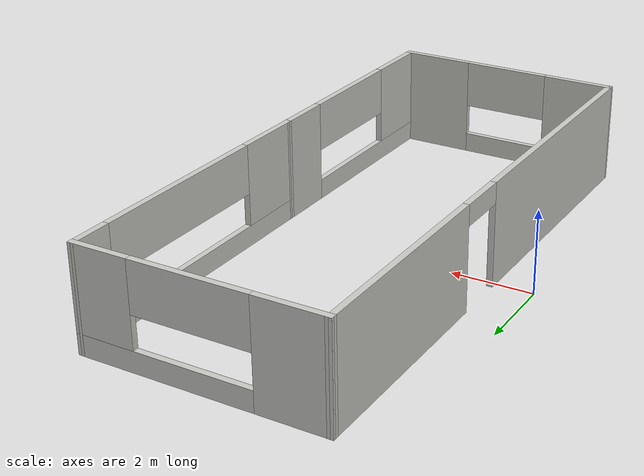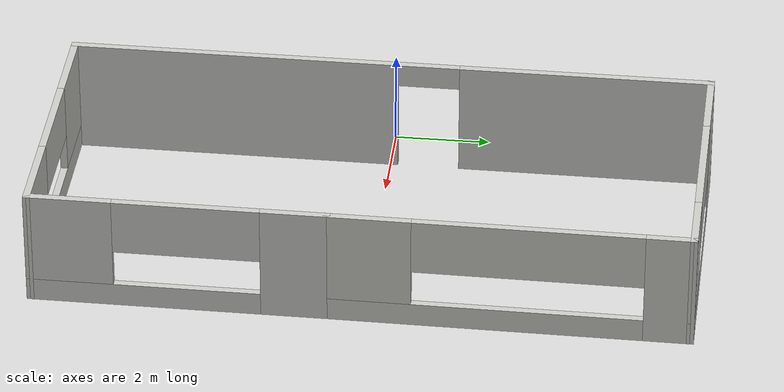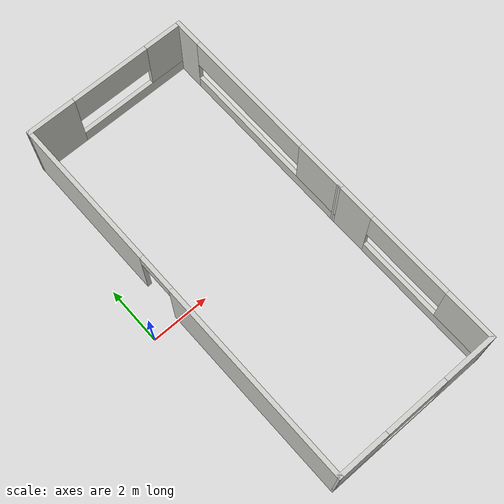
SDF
<sdf version="1.6">
 <model name="single_floor_building">
  <link name="Wall_10">
   <pose>3.86966 6.71461 0 0 -0 0</pose>
   <visual name="Wall_10_Visual_0">
    <pose>-2.10615 0 1.25 0 -0 0</pose>
    <geometry><box><size>1.71925 0.15 2.5</size></box></geometry>
    <material>
     <script><uri>file://media/materials/scripts/gazebo.material</uri><name>Gazebo/CeilingTiled</name></script>
     <ambient>0.996078 0.47451 0.0196078 1</ambient>
     <shader type="pixel"/>
     <diffuse>1 1 1 1</diffuse>
     <specular>0 0 0 1</specular>
     <emissive>0 0 0 1</emissive>
    </material>
    <meta><layer>0</layer></meta>
   </visual>
   <visual name="Wall_10_Visual_1">
    <pose>0.859627 0 0.25 0 -0 0</pose>
    <geometry><box><size>4.2123 0.15 0.5</size></box></geometry>
    <material>
     <script><uri>file://media/materials/scripts/gazebo.material</uri><name>Gazebo/CeilingTiled</name></script>
     <ambient>0.996078 0.47451 0.0196078 1</ambient>
     <shader type="pixel"/>
     <diffuse>1 1 1 1</diffuse>
     <specular>0 0 0 1</specular>
     <emissive>0 0 0 1</emissive>
    </material>
    <meta><layer>0</layer></meta>
   </visual>
   <visual name="Wall_10_Visual_2">
    <pose>2.25525 0 1.5 0 -0 0</pose>
    <geometry><box><size>1.42105 0.15 2</size></box></geometry>
    <material>
     <script><uri>file://media/materials/scripts/gazebo.material</uri><name>Gazebo/CeilingTiled</name></script>
     <ambient>0.996078 0.47451 0.0196078 1</ambient>
     <shader type="pixel"/>
     <diffuse>1 1 1 1</diffuse>
     <specular>0 0 0 1</specular>
     <emissive>0 0 0 1</emissive>
    </material>
    <meta><layer>0</layer></meta>
   </visual>
   <visual name="Wall_10_Visual_3">
    <pose>0.1491 0 1.9 0 -0 0</pose>
    <geometry><box><size>2.79124 0.15 1.2</size></box></geometry>
    <material>
     <script><uri>file://media/materials/scripts/gazebo.material</uri><name>Gazebo/CeilingTiled</name></script>
     <ambient>0.996078 0.47451 0.0196078 1</ambient>
     <shader type="pixel"/>
     <diffuse>1 1 1 1</diffuse>
     <specular>0 0 0 1</specular>
     <emissive>0 0 0 1</emissive>
    </material>
    <meta><layer>0</layer></meta>
   </visual>
   <collision name="Wall_10_Collision_0">
    <pose>-2.10615 0 1.25 0 -0 0</pose>
    <geometry><box><size>1.71925 0.15 2.5</size></box></geometry>
    <surface>
     <friction>
      <ode><mu>1</mu><mu2>1</mu2><fdir1>0 0 0</fdir1><slip1>0</slip1><slip2>0</slip2></ode>
      <torsional>
       <coefficient>1</coefficient>
       <patch_radius>0</patch_radius>
       <surface_radius>0</surface_radius>
       <use_patch_radius>1</use_patch_radius>
       <ode><slip>0</slip></ode>
      </torsional>
     </friction>
     <bounce><restitution_coefficient>0</restitution_coefficient><threshold>1e+06</threshold></bounce>
     <contact>
      <collide_without_contact>0</collide_without_contact>
      <collide_without_contact_bitmask>1</collide_without_contact_bitmask>
      <collide_bitmask>1</collide_bitmask>
      <ode>
       <soft_cfm>0</soft_cfm>
       <soft_erp>0.2</soft_erp>
       <kp>1e+13</kp>
       <kd>1</kd>
       <max_vel>0.01</max_vel>
       <min_depth>0</min_depth>
      </ode>
      <bullet>
       <split_impulse>1</split_impulse>
       <split_impulse_penetration_threshold>-0.01</split_impulse_penetration_threshold>
       <soft_cfm>0</soft_cfm>
       <soft_erp>0.2</soft_erp>
       <kp>1e+13</kp>
       <kd>1</kd>
      </bullet>
     </contact>
    </surface>
   </collision>
   <collision name="Wall_10_Collision_1">
    <pose>0.859627 0 0.25 0 -0 0</pose>
    <geometry><box><size>4.2123 0.15 0.5</size></box></geometry>
    <surface>
     <friction>
      <ode><mu>1</mu><mu2>1</mu2><fdir1>0 0 0</fdir1><slip1>0</slip1><slip2>0</slip2></ode>
      <torsional>
       <coefficient>1</coefficient>
       <patch_radius>0</patch_radius>
       <surface_radius>0</surface_radius>
       <use_patch_radius>1</use_patch_radius>
       <ode><slip>0</slip></ode>
      </torsional>
     </friction>
     <bounce><restitution_coefficient>0</restitution_coefficient><threshold>1e+06</threshold></bounce>
     <contact>
      <collide_without_contact>0</collide_without_contact>
      <collide_without_contact_bitmask>1</collide_without_contact_bitmask>
      <collide_bitmask>1</collide_bitmask>
      <ode>
       <soft_cfm>0</soft_cfm>
       <soft_erp>0.2</soft_erp>
       <kp>1e+13</kp>
       <kd>1</kd>
       <max_vel>0.01</max_vel>
       <min_depth>0</min_depth>
      </ode>
      <bullet>
       <split_impulse>1</split_impulse>
       <split_impulse_penetration_threshold>-0.01</split_impulse_penetration_threshold>
       <soft_cfm>0</soft_cfm>
       <soft_erp>0.2</soft_erp>
       <kp>1e+13</kp>
       <kd>1</kd>
      </bullet>
     </contact>
    </surface>
   </collision>
   <collision name="Wall_10_Collision_2">
    <pose>2.25525 0 1.5 0 -0 0</pose>
    <geometry><box><size>1.42105 0.15 2</size></box></geometry>
    <surface>
     <friction>
      <ode><mu>1</mu><mu2>1</mu2><fdir1>0 0 0</fdir1><slip1>0</slip1><slip2>0</slip2></ode>
      <torsional>
       <coefficient>1</coefficient>
       <patch_radius>0</patch_radius>
       <surface_radius>0</surface_radius>
       <use_patch_radius>1</use_patch_radius>
       <ode><slip>0</slip></ode>
      </torsional>
     </friction>
     <bounce><restitution_coefficient>0</restitution_coefficient><threshold>1e+06</threshold></bounce>
     <contact>
      <collide_without_contact>0</collide_without_contact>
      <collide_without_contact_bitmask>1</collide_without_contact_bitmask>
      <collide_bitmask>1</collide_bitmask>
      <ode>
       <soft_cfm>0</soft_cfm>
       <soft_erp>0.2</soft_erp>
       <kp>1e+13</kp>
       <kd>1</kd>
       <max_vel>0.01</max_vel>
       <min_depth>0</min_depth>
      </ode>
      <bullet>
       <split_impulse>1</split_impulse>
       <split_impulse_penetration_threshold>-0.01</split_impulse_penetration_threshold>
       <soft_cfm>0</soft_cfm>
       <soft_erp>0.2</soft_erp>
       <kp>1e+13</kp>
       <kd>1</kd>
      </bullet>
     </contact>
    </surface>
   </collision>
   <collision name="Wall_10_Collision_3">
    <pose>0.1491 0 1.9 0 -0 0</pose>
    <geometry><box><size>2.79124 0.15 1.2</size></box></geometry>
    <surface>
     <friction>
      <ode><mu>1</mu><mu2>1</mu2><fdir1>0 0 0</fdir1><slip1>0</slip1><slip2>0</slip2></ode>
      <torsional>
       <coefficient>1</coefficient>
       <patch_radius>0</patch_radius>
       <surface_radius>0</surface_radius>
       <use_patch_radius>1</use_patch_radius>
       <ode><slip>0</slip></ode>
      </torsional>
     </friction>
     <bounce><restitution_coefficient>0</restitution_coefficient><threshold>1e+06</threshold></bounce>
     <contact>
      <collide_without_contact>0</collide_without_contact>
      <collide_without_contact_bitmask>1</collide_without_contact_bitmask>
      <collide_bitmask>1</collide_bitmask>
      <ode>
       <soft_cfm>0</soft_cfm>
       <soft_erp>0.2</soft_erp>
       <kp>1e+13</kp>
       <kd>1</kd>
       <max_vel>0.01</max_vel>
       <min_depth>0</min_depth>
      </ode>
      <bullet>
       <split_impulse>1</split_impulse>
       <split_impulse_penetration_threshold>-0.01</split_impulse_penetration_threshold>
       <soft_cfm>0</soft_cfm>
       <soft_erp>0.2</soft_erp>
       <kp>1e+13</kp>
       <kd>1</kd>
      </bullet>
     </contact>
    </surface>
   </collision>
  </link>
  <link name="Wall_11">
   <pose>6.74514 3.02848 0 0 0 -1.57495</pose>
   <visual name="Wall_11_Visual_0">
    <pose>-3.24419 0 1.25 0 -0 0</pose>
    <geometry><box><size>1.03393 0.15 2.5</size></box></geometry>
    <material>
     <script><uri>file://media/materials/scripts/gazebo.material</uri><name>Gazebo/CeilingTiled</name></script>
     <ambient>0.996078 0.47451 0.0196078 1</ambient>
     <shader type="pixel"/>
     <diffuse>1 1 1 1</diffuse>
     <specular>0 0 0 1</specular>
     <emissive>0 0 0 1</emissive>
    </material>
    <meta><layer>0</layer></meta>
   </visual>
   <visual name="Wall_11_Visual_1">
    <pose>0.516965 0 0.25 0 -0 0</pose>
    <geometry><box><size>6.48838 0.15 0.5</size></box></geometry>
    <material>
     <script><uri>file://media/materials/scripts/gazebo.material</uri><name>Gazebo/CeilingTiled</name></script>
     <ambient>0.996078 0.47451 0.0196078 1</ambient>
     <shader type="pixel"/>
     <diffuse>1 1 1 1</diffuse>
     <specular>0 0 0 1</specular>
     <emissive>0 0 0 1</emissive>
    </material>
    <meta><layer>0</layer></meta>
   </visual>
   <visual name="Wall_11_Visual_2">
    <pose>2.86792 0 1.5 0 -0 0</pose>
    <geometry><box><size>1.78646 0.15 2</size></box></geometry>
    <material>
     <script><uri>file://media/materials/scripts/gazebo.material</uri><name>Gazebo/CeilingTiled</name></script>
     <ambient>0.996078 0.47451 0.0196078 1</ambient>
     <shader type="pixel"/>
     <diffuse>1 1 1 1</diffuse>
     <specular>0 0 0 1</specular>
     <emissive>0 0 0 1</emissive>
    </material>
    <meta><layer>0</layer></meta>
   </visual>
   <visual name="Wall_11_Visual_3">
    <pose>-0.376266 0 1.9 0 -0 0</pose>
    <geometry><box><size>4.70192 0.15 1.2</size></box></geometry>
    <material>
     <script><uri>file://media/materials/scripts/gazebo.material</uri><name>Gazebo/CeilingTiled</name></script>
     <ambient>0.996078 0.47451 0.0196078 1</ambient>
     <shader type="pixel"/>
     <diffuse>1 1 1 1</diffuse>
     <specular>0 0 0 1</specular>
     <emissive>0 0 0 1</emissive>
    </material>
    <meta><layer>0</layer></meta>
   </visual>
   <collision name="Wall_11_Collision_0">
    <pose>-3.24419 0 1.25 0 -0 0</pose>
    <geometry><box><size>1.03393 0.15 2.5</size></box></geometry>
    <surface>
     <friction>
      <ode><mu>1</mu><mu2>1</mu2><fdir1>0 0 0</fdir1><slip1>0</slip1><slip2>0</slip2></ode>
      <torsional>
       <coefficient>1</coefficient>
       <patch_radius>0</patch_radius>
       <surface_radius>0</surface_radius>
       <use_patch_radius>1</use_patch_radius>
       <ode><slip>0</slip></ode>
      </torsional>
     </friction>
     <bounce><restitution_coefficient>0</restitution_coefficient><threshold>1e+06</threshold></bounce>
     <contact>
      <collide_without_contact>0</collide_without_contact>
      <collide_without_contact_bitmask>1</collide_without_contact_bitmask>
      <collide_bitmask>1</collide_bitmask>
      <ode>
       <soft_cfm>0</soft_cfm>
       <soft_erp>0.2</soft_erp>
       <kp>1e+13</kp>
       <kd>1</kd>
       <max_vel>0.01</max_vel>
       <min_depth>0</min_depth>
      </ode>
      <bullet>
       <split_impulse>1</split_impulse>
       <split_impulse_penetration_threshold>-0.01</split_impulse_penetration_threshold>
       <soft_cfm>0</soft_cfm>
       <soft_erp>0.2</soft_erp>
       <kp>1e+13</kp>
       <kd>1</kd>
      </bullet>
     </contact>
    </surface>
   </collision>
   <collision name="Wall_11_Collision_1">
    <pose>0.516965 0 0.25 0 -0 0</pose>
    <geometry><box><size>6.48838 0.15 0.5</size></box></geometry>
    <surface>
     <friction>
      <ode><mu>1</mu><mu2>1</mu2><fdir1>0 0 0</fdir1><slip1>0</slip1><slip2>0</slip2></ode>
      <torsional>
       <coefficient>1</coefficient>
       <patch_radius>0</patch_radius>
       <surface_radius>0</surface_radius>
       <use_patch_radius>1</use_patch_radius>
       <ode><slip>0</slip></ode>
      </torsional>
     </friction>
     <bounce><restitution_coefficient>0</restitution_coefficient><threshold>1e+06</threshold></bounce>
     <contact>
      <collide_without_contact>0</collide_without_contact>
      <collide_without_contact_bitmask>1</collide_without_contact_bitmask>
      <collide_bitmask>1</collide_bitmask>
      <ode>
       <soft_cfm>0</soft_cfm>
       <soft_erp>0.2</soft_erp>
       <kp>1e+13</kp>
       <kd>1</kd>
       <max_vel>0.01</max_vel>
       <min_depth>0</min_depth>
      </ode>
      <bullet>
       <split_impulse>1</split_impulse>
       <split_impulse_penetration_threshold>-0.01</split_impulse_penetration_threshold>
       <soft_cfm>0</soft_cfm>
       <soft_erp>0.2</soft_erp>
       <kp>1e+13</kp>
       <kd>1</kd>
      </bullet>
     </contact>
    </surface>
   </collision>
   <collision name="Wall_11_Collision_2">
    <pose>2.86792 0 1.5 0 -0 0</pose>
    <geometry><box><size>1.78646 0.15 2</size></box></geometry>
    <surface>
     <friction>
      <ode><mu>1</mu><mu2>1</mu2><fdir1>0 0 0</fdir1><slip1>0</slip1><slip2>0</slip2></ode>
      <torsional>
       <coefficient>1</coefficient>
       <patch_radius>0</patch_radius>
       <surface_radius>0</surface_radius>
       <use_patch_radius>1</use_patch_radius>
       <ode><slip>0</slip></ode>
      </torsional>
     </friction>
     <bounce><restitution_coefficient>0</restitution_coefficient><threshold>1e+06</threshold></bounce>
     <contact>
      <collide_without_contact>0</collide_without_contact>
      <collide_without_contact_bitmask>1</collide_without_contact_bitmask>
      <collide_bitmask>1</collide_bitmask>
      <ode>
       <soft_cfm>0</soft_cfm>
       <soft_erp>0.2</soft_erp>
       <kp>1e+13</kp>
       <kd>1</kd>
       <max_vel>0.01</max_vel>
       <min_depth>0</min_depth>
      </ode>
      <bullet>
       <split_impulse>1</split_impulse>
       <split_impulse_penetration_threshold>-0.01</split_impulse_penetration_threshold>
       <soft_cfm>0</soft_cfm>
       <soft_erp>0.2</soft_erp>
       <kp>1e+13</kp>
       <kd>1</kd>
      </bullet>
     </contact>
    </surface>
   </collision>
   <collision name="Wall_11_Collision_3">
    <pose>-0.376266 0 1.9 0 -0 0</pose>
    <geometry><box><size>4.70192 0.15 1.2</size></box></geometry>
    <surface>
     <friction>
      <ode><mu>1</mu><mu2>1</mu2><fdir1>0 0 0</fdir1><slip1>0</slip1><slip2>0</slip2></ode>
      <torsional>
       <coefficient>1</coefficient>
       <patch_radius>0</patch_radius>
       <surface_radius>0</surface_radius>
       <use_patch_radius>1</use_patch_radius>
       <ode><slip>0</slip></ode>
      </torsional>
     </friction>
     <bounce><restitution_coefficient>0</restitution_coefficient><threshold>1e+06</threshold></bounce>
     <contact>
      <collide_without_contact>0</collide_without_contact>
      <collide_without_contact_bitmask>1</collide_without_contact_bitmask>
      <collide_bitmask>1</collide_bitmask>
      <ode>
       <soft_cfm>0</soft_cfm>
       <soft_erp>0.2</soft_erp>
       <kp>1e+13</kp>
       <kd>1</kd>
       <max_vel>0.01</max_vel>
       <min_depth>0</min_depth>
      </ode>
      <bullet>
       <split_impulse>1</split_impulse>
       <split_impulse_penetration_threshold>-0.01</split_impulse_penetration_threshold>
       <soft_cfm>0</soft_cfm>
       <soft_erp>0.2</soft_erp>
       <kp>1e+13</kp>
       <kd>1</kd>
      </bullet>
     </contact>
    </surface>
   </collision>
  </link>
  <link name="Wall_7">
   <pose>6.72985 -3.70137 0 0 0 -1.5708</pose>
   <visual name="Wall_7_Visual_0">
    <pose>-2.40595 0 1.25 0 -0 0</pose>
    <geometry><box><size>1.42563 0.15 2.5</size></box></geometry>
    <material>
     <script><uri>file://media/materials/scripts/gazebo.material</uri><name>Gazebo/CeilingTiled</name></script>
     <ambient>0.996078 0.47451 0.0196078 1</ambient>
     <shader type="pixel"/>
     <diffuse>1 1 1 1</diffuse>
     <specular>0 0 0 1</specular>
     <emissive>0 0 0 1</emissive>
    </material>
    <meta><layer>0</layer></meta>
   </visual>
   <visual name="Wall_7_Visual_1">
    <pose>0.712816 0 0.25 0 -0 0</pose>
    <geometry><box><size>4.8119 0.15 0.5</size></box></geometry>
    <material>
     <script><uri>file://media/materials/scripts/gazebo.material</uri><name>Gazebo/CeilingTiled</name></script>
     <ambient>0.996078 0.47451 0.0196078 1</ambient>
     <shader type="pixel"/>
     <diffuse>1 1 1 1</diffuse>
     <specular>0 0 0 1</specular>
     <emissive>0 0 0 1</emissive>
    </material>
    <meta><layer>0</layer></meta>
   </visual>
   <visual name="Wall_7_Visual_2">
    <pose>2.21906 0 1.5 0 -0 0</pose>
    <geometry><box><size>1.79941 0.15 2</size></box></geometry>
    <material>
     <script><uri>file://media/materials/scripts/gazebo.material</uri><name>Gazebo/CeilingTiled</name></script>
     <ambient>0.996078 0.47451 0.0196078 1</ambient>
     <shader type="pixel"/>
     <diffuse>1 1 1 1</diffuse>
     <specular>0 0 0 1</specular>
     <emissive>0 0 0 1</emissive>
    </material>
    <meta><layer>0</layer></meta>
   </visual>
   <visual name="Wall_7_Visual_3">
    <pose>-0.186888 0 1.9 0 -0 0</pose>
    <geometry><box><size>3.01249 0.15 1.2</size></box></geometry>
    <material>
     <script><uri>file://media/materials/scripts/gazebo.material</uri><name>Gazebo/CeilingTiled</name></script>
     <ambient>0.996078 0.47451 0.0196078 1</ambient>
     <shader type="pixel"/>
     <diffuse>1 1 1 1</diffuse>
     <specular>0 0 0 1</specular>
     <emissive>0 0 0 1</emissive>
    </material>
    <meta><layer>0</layer></meta>
   </visual>
   <collision name="Wall_7_Collision_0">
    <pose>-2.40595 0 1.25 0 -0 0</pose>
    <geometry><box><size>1.42563 0.15 2.5</size></box></geometry>
    <surface>
     <friction>
      <ode><mu>1</mu><mu2>1</mu2><fdir1>0 0 0</fdir1><slip1>0</slip1><slip2>0</slip2></ode>
      <torsional>
       <coefficient>1</coefficient>
       <patch_radius>0</patch_radius>
       <surface_radius>0</surface_radius>
       <use_patch_radius>1</use_patch_radius>
       <ode><slip>0</slip></ode>
      </torsional>
     </friction>
     <bounce><restitution_coefficient>0</restitution_coefficient><threshold>1e+06</threshold></bounce>
     <contact>
      <collide_without_contact>0</collide_without_contact>
      <collide_without_contact_bitmask>1</collide_without_contact_bitmask>
      <collide_bitmask>1</collide_bitmask>
      <ode>
       <soft_cfm>0</soft_cfm>
       <soft_erp>0.2</soft_erp>
       <kp>1e+13</kp>
       <kd>1</kd>
       <max_vel>0.01</max_vel>
       <min_depth>0</min_depth>
      </ode>
      <bullet>
       <split_impulse>1</split_impulse>
       <split_impulse_penetration_threshold>-0.01</split_impulse_penetration_threshold>
       <soft_cfm>0</soft_cfm>
       <soft_erp>0.2</soft_erp>
       <kp>1e+13</kp>
       <kd>1</kd>
      </bullet>
     </contact>
    </surface>
   </collision>
   <collision name="Wall_7_Collision_1">
    <pose>0.712816 0 0.25 0 -0 0</pose>
    <geometry><box><size>4.8119 0.15 0.5</size></box></geometry>
    <surface>
     <friction>
      <ode><mu>1</mu><mu2>1</mu2><fdir1>0 0 0</fdir1><slip1>0</slip1><slip2>0</slip2></ode>
      <torsional>
       <coefficient>1</coefficient>
       <patch_radius>0</patch_radius>
       <surface_radius>0</surface_radius>
       <use_patch_radius>1</use_patch_radius>
       <ode><slip>0</slip></ode>
      </torsional>
     </friction>
     <bounce><restitution_coefficient>0</restitution_coefficient><threshold>1e+06</threshold></bounce>
     <contact>
      <collide_without_contact>0</collide_without_contact>
      <collide_without_contact_bitmask>1</collide_without_contact_bitmask>
      <collide_bitmask>1</collide_bitmask>
      <ode>
       <soft_cfm>0</soft_cfm>
       <soft_erp>0.2</soft_erp>
       <kp>1e+13</kp>
       <kd>1</kd>
       <max_vel>0.01</max_vel>
       <min_depth>0</min_depth>
      </ode>
      <bullet>
       <split_impulse>1</split_impulse>
       <split_impulse_penetration_threshold>-0.01</split_impulse_penetration_threshold>
       <soft_cfm>0</soft_cfm>
       <soft_erp>0.2</soft_erp>
       <kp>1e+13</kp>
       <kd>1</kd>
      </bullet>
     </contact>
    </surface>
   </collision>
   <collision name="Wall_7_Collision_2">
    <pose>2.21906 0 1.5 0 -0 0</pose>
    <geometry><box><size>1.79941 0.15 2</size></box></geometry>
    <surface>
     <friction>
      <ode><mu>1</mu><mu2>1</mu2><fdir1>0 0 0</fdir1><slip1>0</slip1><slip2>0</slip2></ode>
      <torsional>
       <coefficient>1</coefficient>
       <patch_radius>0</patch_radius>
       <surface_radius>0</surface_radius>
       <use_patch_radius>1</use_patch_radius>
       <ode><slip>0</slip></ode>
      </torsional>
     </friction>
     <bounce><restitution_coefficient>0</restitution_coefficient><threshold>1e+06</threshold></bounce>
     <contact>
      <collide_without_contact>0</collide_without_contact>
      <collide_without_contact_bitmask>1</collide_without_contact_bitmask>
      <collide_bitmask>1</collide_bitmask>
      <ode>
       <soft_cfm>0</soft_cfm>
       <soft_erp>0.2</soft_erp>
       <kp>1e+13</kp>
       <kd>1</kd>
       <max_vel>0.01</max_vel>
       <min_depth>0</min_depth>
      </ode>
      <bullet>
       <split_impulse>1</split_impulse>
       <split_impulse_penetration_threshold>-0.01</split_impulse_penetration_threshold>
       <soft_cfm>0</soft_cfm>
       <soft_erp>0.2</soft_erp>
       <kp>1e+13</kp>
       <kd>1</kd>
      </bullet>
     </contact>
    </surface>
   </collision>
   <collision name="Wall_7_Collision_3">
    <pose>-0.186888 0 1.9 0 -0 0</pose>
    <geometry><box><size>3.01249 0.15 1.2</size></box></geometry>
    <surface>
     <friction>
      <ode><mu>1</mu><mu2>1</mu2><fdir1>0 0 0</fdir1><slip1>0</slip1><slip2>0</slip2></ode>
      <torsional>
       <coefficient>1</coefficient>
       <patch_radius>0</patch_radius>
       <surface_radius>0</surface_radius>
       <use_patch_radius>1</use_patch_radius>
       <ode><slip>0</slip></ode>
      </torsional>
     </friction>
     <bounce><restitution_coefficient>0</restitution_coefficient><threshold>1e+06</threshold></bounce>
     <contact>
      <collide_without_contact>0</collide_without_contact>
      <collide_without_contact_bitmask>1</collide_without_contact_bitmask>
      <collide_bitmask>1</collide_bitmask>
      <ode>
       <soft_cfm>0</soft_cfm>
       <soft_erp>0.2</soft_erp>
       <kp>1e+13</kp>
       <kd>1</kd>
       <max_vel>0.01</max_vel>
       <min_depth>0</min_depth>
      </ode>
      <bullet>
       <split_impulse>1</split_impulse>
       <split_impulse_penetration_threshold>-0.01</split_impulse_penetration_threshold>
       <soft_cfm>0</soft_cfm>
       <soft_erp>0.2</soft_erp>
       <kp>1e+13</kp>
       <kd>1</kd>
      </bullet>
     </contact>
    </surface>
   </collision>
  </link>
  <link name="Wall_8">
   <pose>3.86966 -6.7298 0 0 -0 3.13625</pose>
   <visual name="Wall_8_Visual_0">
    <pose>-1.99488 0 1.25 0 -0 0</pose>
    <geometry><box><size>1.8807 0.15 2.5</size></box></geometry>
    <material>
     <script><uri>file://media/materials/scripts/gazebo.material</uri><name>Gazebo/CeilingTiled</name></script>
     <ambient>0.996078 0.47451 0.0196078 1</ambient>
     <shader type="pixel"/>
     <diffuse>1 1 1 1</diffuse>
     <specular>0 0 0 1</specular>
     <emissive>0 0 0 1</emissive>
    </material>
    <meta><layer>0</layer></meta>
   </visual>
   <visual name="Wall_8_Visual_1">
    <pose>0.940351 0 0.25 0 -0 0</pose>
    <geometry><box><size>3.98975 0.15 0.5</size></box></geometry>
    <material>
     <script><uri>file://media/materials/scripts/gazebo.material</uri><name>Gazebo/CeilingTiled</name></script>
     <ambient>0.996078 0.47451 0.0196078 1</ambient>
     <shader type="pixel"/>
     <diffuse>1 1 1 1</diffuse>
     <specular>0 0 0 1</specular>
     <emissive>0 0 0 1</emissive>
    </material>
    <meta><layer>0</layer></meta>
   </visual>
   <visual name="Wall_8_Visual_2">
    <pose>2.03431 0 1.5 0 -0 0</pose>
    <geometry><box><size>1.80183 0.15 2</size></box></geometry>
    <material>
     <script><uri>file://media/materials/scripts/gazebo.material</uri><name>Gazebo/CeilingTiled</name></script>
     <ambient>0.996078 0.47451 0.0196078 1</ambient>
     <shader type="pixel"/>
     <diffuse>1 1 1 1</diffuse>
     <specular>0 0 0 1</specular>
     <emissive>0 0 0 1</emissive>
    </material>
    <meta><layer>0</layer></meta>
   </visual>
   <visual name="Wall_8_Visual_3">
    <pose>0.039436 0 1.9 0 -0 0</pose>
    <geometry><box><size>2.18792 0.15 1.2</size></box></geometry>
    <material>
     <script><uri>file://media/materials/scripts/gazebo.material</uri><name>Gazebo/CeilingTiled</name></script>
     <ambient>0.996078 0.47451 0.0196078 1</ambient>
     <shader type="pixel"/>
     <diffuse>1 1 1 1</diffuse>
     <specular>0 0 0 1</specular>
     <emissive>0 0 0 1</emissive>
    </material>
    <meta><layer>0</layer></meta>
   </visual>
   <collision name="Wall_8_Collision_0">
    <pose>-1.99488 0 1.25 0 -0 0</pose>
    <geometry><box><size>1.8807 0.15 2.5</size></box></geometry>
    <surface>
     <friction>
      <ode><mu>1</mu><mu2>1</mu2><fdir1>0 0 0</fdir1><slip1>0</slip1><slip2>0</slip2></ode>
      <torsional>
       <coefficient>1</coefficient>
       <patch_radius>0</patch_radius>
       <surface_radius>0</surface_radius>
       <use_patch_radius>1</use_patch_radius>
       <ode><slip>0</slip></ode>
      </torsional>
     </friction>
     <bounce><restitution_coefficient>0</restitution_coefficient><threshold>1e+06</threshold></bounce>
     <contact>
      <collide_without_contact>0</collide_without_contact>
      <collide_without_contact_bitmask>1</collide_without_contact_bitmask>
      <collide_bitmask>1</collide_bitmask>
      <ode>
       <soft_cfm>0</soft_cfm>
       <soft_erp>0.2</soft_erp>
       <kp>1e+13</kp>
       <kd>1</kd>
       <max_vel>0.01</max_vel>
       <min_depth>0</min_depth>
      </ode>
      <bullet>
       <split_impulse>1</split_impulse>
       <split_impulse_penetration_threshold>-0.01</split_impulse_penetration_threshold>
       <soft_cfm>0</soft_cfm>
       <soft_erp>0.2</soft_erp>
       <kp>1e+13</kp>
       <kd>1</kd>
      </bullet>
     </contact>
    </surface>
   </collision>
   <collision name="Wall_8_Collision_1">
    <pose>0.940351 0 0.25 0 -0 0</pose>
    <geometry><box><size>3.98975 0.15 0.5</size></box></geometry>
    <surface>
     <friction>
      <ode><mu>1</mu><mu2>1</mu2><fdir1>0 0 0</fdir1><slip1>0</slip1><slip2>0</slip2></ode>
      <torsional>
       <coefficient>1</coefficient>
       <patch_radius>0</patch_radius>
       <surface_radius>0</surface_radius>
       <use_patch_radius>1</use_patch_radius>
       <ode><slip>0</slip></ode>
      </torsional>
     </friction>
     <bounce><restitution_coefficient>0</restitution_coefficient><threshold>1e+06</threshold></bounce>
     <contact>
      <collide_without_contact>0</collide_without_contact>
      <collide_without_contact_bitmask>1</collide_without_contact_bitmask>
      <collide_bitmask>1</collide_bitmask>
      <ode>
       <soft_cfm>0</soft_cfm>
       <soft_erp>0.2</soft_erp>
       <kp>1e+13</kp>
       <kd>1</kd>
       <max_vel>0.01</max_vel>
       <min_depth>0</min_depth>
      </ode>
      <bullet>
       <split_impulse>1</split_impulse>
       <split_impulse_penetration_threshold>-0.01</split_impulse_penetration_threshold>
       <soft_cfm>0</soft_cfm>
       <soft_erp>0.2</soft_erp>
       <kp>1e+13</kp>
       <kd>1</kd>
      </bullet>
     </contact>
    </surface>
   </collision>
   <collision name="Wall_8_Collision_2">
    <pose>2.03431 0 1.5 0 -0 0</pose>
    <geometry><box><size>1.80183 0.15 2</size></box></geometry>
    <surface>
     <friction>
      <ode><mu>1</mu><mu2>1</mu2><fdir1>0 0 0</fdir1><slip1>0</slip1><slip2>0</slip2></ode>
      <torsional>
       <coefficient>1</coefficient>
       <patch_radius>0</patch_radius>
       <surface_radius>0</surface_radius>
       <use_patch_radius>1</use_patch_radius>
       <ode><slip>0</slip></ode>
      </torsional>
     </friction>
     <bounce><restitution_coefficient>0</restitution_coefficient><threshold>1e+06</threshold></bounce>
     <contact>
      <collide_without_contact>0</collide_without_contact>
      <collide_without_contact_bitmask>1</collide_without_contact_bitmask>
      <collide_bitmask>1</collide_bitmask>
      <ode>
       <soft_cfm>0</soft_cfm>
       <soft_erp>0.2</soft_erp>
       <kp>1e+13</kp>
       <kd>1</kd>
       <max_vel>0.01</max_vel>
       <min_depth>0</min_depth>
      </ode>
      <bullet>
       <split_impulse>1</split_impulse>
       <split_impulse_penetration_threshold>-0.01</split_impulse_penetration_threshold>
       <soft_cfm>0</soft_cfm>
       <soft_erp>0.2</soft_erp>
       <kp>1e+13</kp>
       <kd>1</kd>
      </bullet>
     </contact>
    </surface>
   </collision>
   <collision name="Wall_8_Collision_3">
    <pose>0.039436 0 1.9 0 -0 0</pose>
    <geometry><box><size>2.18792 0.15 1.2</size></box></geometry>
    <surface>
     <friction>
      <ode><mu>1</mu><mu2>1</mu2><fdir1>0 0 0</fdir1><slip1>0</slip1><slip2>0</slip2></ode>
      <torsional>
       <coefficient>1</coefficient>
       <patch_radius>0</patch_radius>
       <surface_radius>0</surface_radius>
       <use_patch_radius>1</use_patch_radius>
       <ode><slip>0</slip></ode>
      </torsional>
     </friction>
     <bounce><restitution_coefficient>0</restitution_coefficient><threshold>1e+06</threshold></bounce>
     <contact>
      <collide_without_contact>0</collide_without_contact>
      <collide_without_contact_bitmask>1</collide_without_contact_bitmask>
      <collide_bitmask>1</collide_bitmask>
      <ode>
       <soft_cfm>0</soft_cfm>
       <soft_erp>0.2</soft_erp>
       <kp>1e+13</kp>
       <kd>1</kd>
       <max_vel>0.01</max_vel>
       <min_depth>0</min_depth>
      </ode>
      <bullet>
       <split_impulse>1</split_impulse>
       <split_impulse_penetration_threshold>-0.01</split_impulse_penetration_threshold>
       <soft_cfm>0</soft_cfm>
       <soft_erp>0.2</soft_erp>
       <kp>1e+13</kp>
       <kd>1</kd>
      </bullet>
     </contact>
    </surface>
   </collision>
  </link>
  <link name="Wall_9">
   <pose>0.994177 5e-05 0 0 -0 1.57307</pose>
   <visual name="Wall_9_Visual_0">
    <pose>-3.31645 0 1.25 0 -0 0</pose>
    <geometry><box><size>6.94625 0.15 2.5</size></box></geometry>
    <material>
     <script><uri>file://media/materials/scripts/gazebo.material</uri><name>Gazebo/CeilingTiled</name></script>
     <ambient>0.921569 0.807843 0.615686 1</ambient>
     <shader type="pixel"/>
     <diffuse>1 1 1 1</diffuse>
     <specular>0 0 0 1</specular>
     <emissive>0 0 0 1</emissive>
    </material>
    <meta><layer>0</layer></meta>
   </visual>
   <visual name="Wall_9_Visual_1">
    <pose>4.11974 0 1.25 0 -0 0</pose>
    <geometry><box><size>5.33967 0.15 2.5</size></box></geometry>
    <material>
     <script><uri>file://media/materials/scripts/gazebo.material</uri><name>Gazebo/CeilingTiled</name></script>
     <ambient>0.921569 0.807843 0.615686 1</ambient>
     <shader type="pixel"/>
     <diffuse>1 1 1 1</diffuse>
     <specular>0 0 0 1</specular>
     <emissive>0 0 0 1</emissive>
    </material>
    <meta><layer>0</layer></meta>
   </visual>
   <visual name="Wall_9_Visual_2">
    <pose>0.803289 0 2.25 0 -0 0</pose>
    <geometry><box><size>1.29322 0.15 0.5</size></box></geometry>
    <material>
     <script><uri>file://media/materials/scripts/gazebo.material</uri><name>Gazebo/CeilingTiled</name></script>
     <ambient>0.921569 0.807843 0.615686 1</ambient>
     <shader type="pixel"/>
     <diffuse>1 1 1 1</diffuse>
     <specular>0 0 0 1</specular>
     <emissive>0 0 0 1</emissive>
    </material>
    <meta><layer>0</layer></meta>
   </visual>
   <collision name="Wall_9_Collision_0">
    <pose>-3.31645 0 1.25 0 -0 0</pose>
    <geometry><box><size>6.94625 0.15 2.5</size></box></geometry>
    <surface>
     <friction>
      <ode><mu>1</mu><mu2>1</mu2><fdir1>0 0 0</fdir1><slip1>0</slip1><slip2>0</slip2></ode>
      <torsional>
       <coefficient>1</coefficient>
       <patch_radius>0</patch_radius>
       <surface_radius>0</surface_radius>
       <use_patch_radius>1</use_patch_radius>
       <ode><slip>0</slip></ode>
      </torsional>
     </friction>
     <bounce><restitution_coefficient>0</restitution_coefficient><threshold>1e+06</threshold></bounce>
     <contact>
      <collide_without_contact>0</collide_without_contact>
      <collide_without_contact_bitmask>1</collide_without_contact_bitmask>
      <collide_bitmask>1</collide_bitmask>
      <ode>
       <soft_cfm>0</soft_cfm>
       <soft_erp>0.2</soft_erp>
       <kp>1e+13</kp>
       <kd>1</kd>
       <max_vel>0.01</max_vel>
       <min_depth>0</min_depth>
      </ode>
      <bullet>
       <split_impulse>1</split_impulse>
       <split_impulse_penetration_threshold>-0.01</split_impulse_penetration_threshold>
       <soft_cfm>0</soft_cfm>
       <soft_erp>0.2</soft_erp>
       <kp>1e+13</kp>
       <kd>1</kd>
      </bullet>
     </contact>
    </surface>
   </collision>
   <collision name="Wall_9_Collision_1">
    <pose>4.11974 0 1.25 0 -0 0</pose>
    <geometry><box><size>5.33967 0.15 2.5</size></box></geometry>
    <surface>
     <friction>
      <ode><mu>1</mu><mu2>1</mu2><fdir1>0 0 0</fdir1><slip1>0</slip1><slip2>0</slip2></ode>
      <torsional>
       <coefficient>1</coefficient>
       <patch_radius>0</patch_radius>
       <surface_radius>0</surface_radius>
       <use_patch_radius>1</use_patch_radius>
       <ode><slip>0</slip></ode>
      </torsional>
     </friction>
     <bounce><restitution_coefficient>0</restitution_coefficient><threshold>1e+06</threshold></bounce>
     <contact>
      <collide_without_contact>0</collide_without_contact>
      <collide_without_contact_bitmask>1</collide_without_contact_bitmask>
      <collide_bitmask>1</collide_bitmask>
      <ode>
       <soft_cfm>0</soft_cfm>
       <soft_erp>0.2</soft_erp>
       <kp>1e+13</kp>
       <kd>1</kd>
       <max_vel>0.01</max_vel>
       <min_depth>0</min_depth>
      </ode>
      <bullet>
       <split_impulse>1</split_impulse>
       <split_impulse_penetration_threshold>-0.01</split_impulse_penetration_threshold>
       <soft_cfm>0</soft_cfm>
       <soft_erp>0.2</soft_erp>
       <kp>1e+13</kp>
       <kd>1</kd>
      </bullet>
     </contact>
    </surface>
   </collision>
   <collision name="Wall_9_Collision_2">
    <pose>0.803289 0 2.25 0 -0 0</pose>
    <geometry><box><size>1.29322 0.15 0.5</size></box></geometry>
    <surface>
     <friction>
      <ode><mu>1</mu><mu2>1</mu2><fdir1>0 0 0</fdir1><slip1>0</slip1><slip2>0</slip2></ode>
      <torsional>
       <coefficient>1</coefficient>
       <patch_radius>0</patch_radius>
       <surface_radius>0</surface_radius>
       <use_patch_radius>1</use_patch_radius>
       <ode><slip>0</slip></ode>
      </torsional>
     </friction>
     <bounce><restitution_coefficient>0</restitution_coefficient><threshold>1e+06</threshold></bounce>
     <contact>
      <collide_without_contact>0</collide_without_contact>
      <collide_without_contact_bitmask>1</collide_without_contact_bitmask>
      <collide_bitmask>1</collide_bitmask>
      <ode>
       <soft_cfm>0</soft_cfm>
       <soft_erp>0.2</soft_erp>
       <kp>1e+13</kp>
       <kd>1</kd>
       <max_vel>0.01</max_vel>
       <min_depth>0</min_depth>
      </ode>
      <bullet>
       <split_impulse>1</split_impulse>
       <split_impulse_penetration_threshold>-0.01</split_impulse_penetration_threshold>
       <soft_cfm>0</soft_cfm>
       <soft_erp>0.2</soft_erp>
       <kp>1e+13</kp>
       <kd>1</kd>
      </bullet>
     </contact>
    </surface>
   </collision>
  </link>
  <static>1</static>
 </model>
</sdf>
